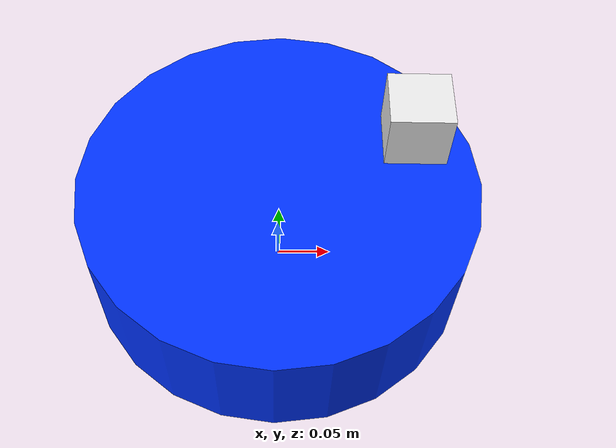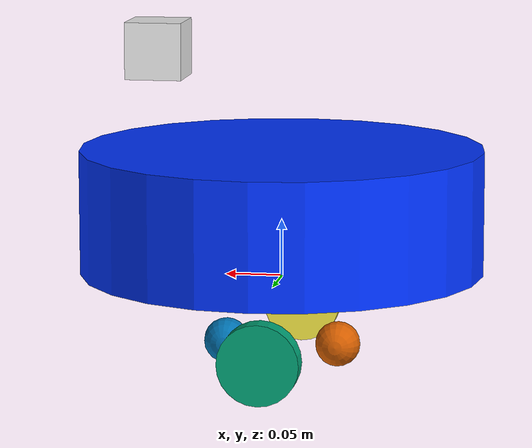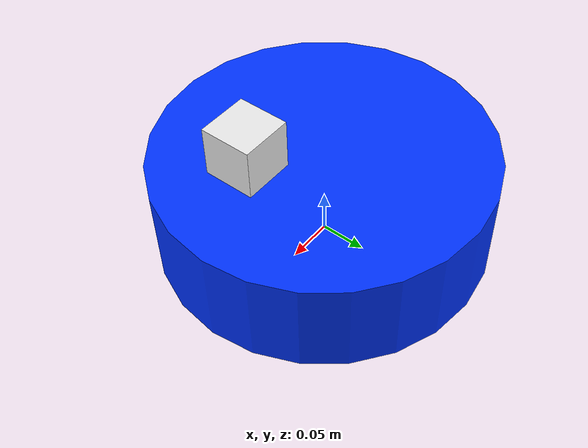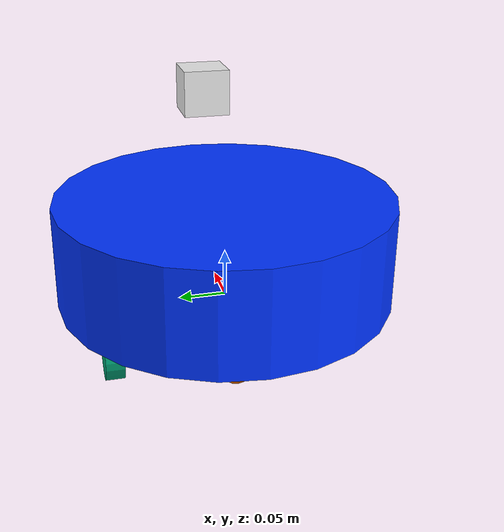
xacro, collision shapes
<?xml version="1.0" encoding="utf-8"?>

<robot name="barista_kobuki" xmlns:xacro="http://ros.org/wiki/xacro">
  <xacro:include filename="$(find rsrobot_description)/urdf/common_properties.urdf.xacro"/>
  <xacro:include filename="$(find rsrobot_description)/urdf/barista.gazebo"/>

                       <!-- Kobuki -->
    <link name="base_footprint"/>
    <joint name="base_joint" type="fixed">
      <origin xyz="0 0 0.0" rpy="0 0 0" />
      <parent link="base_footprint"/>
      <child link="base_link" />
    </joint>
    <link name="base_link">
      <visual>
        <geometry>
          <!-- new mesh -->
          <cylinder length="0.22" radius="${0.235/2}"/>
        </geometry>
        <origin xyz="0.001 0 0.05199" rpy="0 0 0"/>
        <material name="base_lcolor">
          <color rgba="0.0 0.20 1.0 1.0"/>
          <texture filename=""/>
        </material>
      </visual>
      <collision>
        <geometry>
          <cylinder length="0.10938" radius="0.178"/>
        </geometry>
        <origin xyz="0.0 0 0.05949" rpy="0 0 0"/>
      </collision>
      <inertial>
        <!-- COM experimentally determined -->
        <origin xyz="0.01 0 0"/>
        <mass value="2.4"/> <!-- 2.4/2.6 kg for small/big battery pack -->
        <inertia ixx="0.019995" ixy="0.0" ixz="0.0"
                 iyy="0.019995" iyz="0.0"
                 izz="0.03675" />
      </inertial>
    </link>

    <joint name="wheel_left_joint" type="continuous">
      <parent link="base_link"/>
      <child link="wheel_left_link"/>
      <origin xyz="0.00 ${0.25/2} -0.05" rpy="${-M_PI/2} 0 0"/>
      <axis xyz="0 0 1"/>
    </joint>

    <link name="wheel_left_link">
      <visual>
        <geometry>
          <mesh filename="package://rsrobot_description/meshes/wheel.dae"/>
        </geometry>
        <origin xyz="0 0 0" rpy="0 0 0"/>
      </visual>
      <collision>
        <geometry>
          <cylinder length="0.0206" radius="0.0352"/>
        </geometry>
        <origin rpy="0 0 0" xyz="0 0 0"/>
      </collision>
      <inertial>
        <mass value="0.01" />
        <origin xyz="0 0 0" />
        <inertia ixx="0.001" ixy="0.0" ixz="0.0"
                 iyy="0.001" iyz="0.0"
                 izz="0.001" />
      </inertial>
    </link>

    <joint name="wheel_right_joint" type="continuous">
      <parent link="base_link"/>
      <child link="wheel_right_link"/>
      <origin xyz="0.00 -${0.25/2} -0.05" rpy="${-M_PI/2} 0 0"/>
      <axis xyz="0 0 1"/>
    </joint>

    <link name="wheel_right_link">
      <visual>
        <geometry>
          <mesh filename="package://rsrobot_description/meshes/wheel.dae"/>
        </geometry>
        <origin xyz="0 0 0" rpy="0 0 0"/>
      </visual>
      <collision>
        <geometry>
          <cylinder length="0.0206" radius="0.0350"/>
        </geometry>
        <origin rpy="0 0 0" xyz="0 0 0"/>
      </collision>
      <inertial>
        <mass value="0.01" />
        <origin xyz="0 0 0" />
        <inertia ixx="0.001" ixy="0.0" ixz="0.0"
                 iyy="0.001" iyz="0.0"
                 izz="0.001" />
      </inertial>
    </link>

    <joint name="caster_front_joint" type="fixed">
      <parent link="base_link"/>
      <child link="caster_front_link"/>
      <origin xyz="0.05 0.0 -0.06" rpy="${-M_PI/2} 0 0"/>
    </joint>

    <link name="caster_front_link">
      <visual>
        <geometry>
          <sphere radius="0.02"/>
        </geometry>
        <origin rpy="0 0 0" xyz="0 0 0"/>
      </visual>
      <collision>
        <geometry>
          <sphere radius="0.02"/>
        </geometry>
        <origin rpy="0 0 0" xyz="0 0 0"/>
      </collision>
      <inertial>
        <mass value="0.01" />
        <origin xyz="0 0 0" />
        <inertia ixx="0.001" ixy="0.0" ixz="0.0"
                 iyy="0.001" iyz="0.0"
                 izz="0.001" />
      </inertial>
    </link>

    <joint name="caster_back_joint" type="fixed">
      <parent link="base_link"/>
      <child link="caster_back_link"/>
      <origin xyz="-0.05 0.0 -0.06" rpy="${-M_PI/2} 0 0"/>
    </joint>
    <link name="caster_back_link">
      <visual>
        <geometry>
          <sphere radius="0.02"/>
        </geometry>
        <origin rpy="0 0 0" xyz="0 0 0"/>
      </visual>
      <collision>
        <geometry>
          <sphere radius="0.02"/>
        </geometry>
        <origin rpy="0 0 0" xyz="0 0 0"/>
      </collision>
      <inertial>
        <mass value="0.01" />
        <origin xyz="0 0 0" />
        <inertia ixx="0.001" ixy="0.0" ixz="0.0"
                 iyy="0.001" iyz="0.0"
                 izz="0.001" />
      </inertial>
    </link>

        <!--kinect_link-->
  <link name="camera_link">
      <inertial>
        <origin xyz="0.0 0.0 0.0" rpy="0.0 0.0 0.0"/>
        <mass value="0.1"/>
        <inertia ixx="1e-6" ixy="0.0" ixz="0.0" iyy="1e-6" iyz="0.0" izz="1e-6"/>
      </inertial>
      <visual name="kinect_visual">
        <origin xyz="0.0 0.0 0.0" rpy="0.0 0.0 0.0"/>
        <geometry>
          <mesh filename="package://rsrobot_description/meshes/kinect.dae"/>
        </geometry>
        <material name="white"/>
      </visual>
      <collision>
        <origin xyz="0.0 0.0 0.0" rpy="0.0 0.0 0.0"/>
        <geometry>
          <box size="0.05 0.05 0.05"/>
        </geometry>
      </collision>
    </link>

      <joint name="kinect_joint" type="fixed">
        <origin xyz="0.11 0.0 0.20" rpy="0.0 0.0 0.0"/>
        <parent link="base_link"/>
        <child link="camera_link"/>
        <axis xyz="0.0 0 1.0"/>
      </joint>

      <joint name="camera_optical_joint" type="fixed">
        <origin xyz="0 0 0" rpy="-1.5707 0 -1.5707"/>
        <parent link="camera_link"/>
        <child link="camera_link_optical"/>
      </joint>

      <link name="camera_link_optical">
    </link>

  <link name="imu_link">
    <inertial>
      <origin xyz="0.0 0.0 0.0" rpy="0.0 0.0 0.0"/>
      <mass value="0.0"/>
      <inertia ixx="0.0" ixy="0.0" ixz="0.0" iyy="0.0" iyz="0.0" izz="0.0"/>
    </inertial>
    <visual name="">
      <origin xyz="0.0 0.0 0.0" rpy="0.0 0.0 0.0"/>
      <geometry>
        <box size="0.03 0.03 0.01"/>
      </geometry>
      <material name="">
        <color rgba="1.0 0.0 0.0 1.0"/>
        <texture filename=""/>
      </material>
    </visual>
    <collision>
      <origin xyz="0.0 0.0 0.0" rpy="0.0 0.0 0.0"/>
      <geometry>
        <box size="0.03 0.03 0.01"/>
      </geometry>
    </collision>
  </link>
  <joint name="imu_joint" type="fixed">
    <origin xyz="0.09 0.0 0.084" rpy="1.5707 0 0"/>
    <parent link="base_link"/>
    <child link="imu_link"/>
    <axis xyz="0.0 0.0 0.0"/>
  </joint>

</robot>
